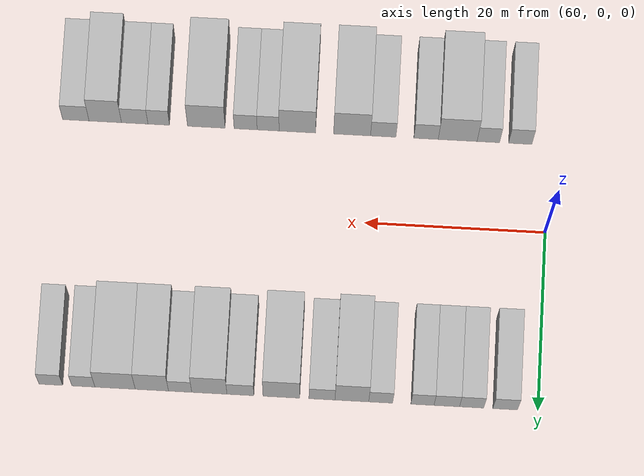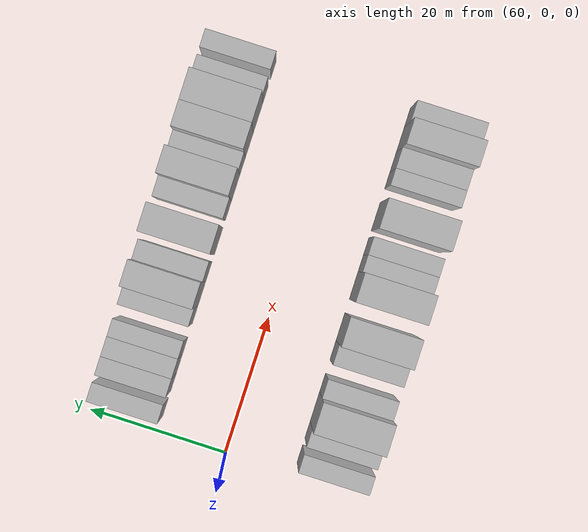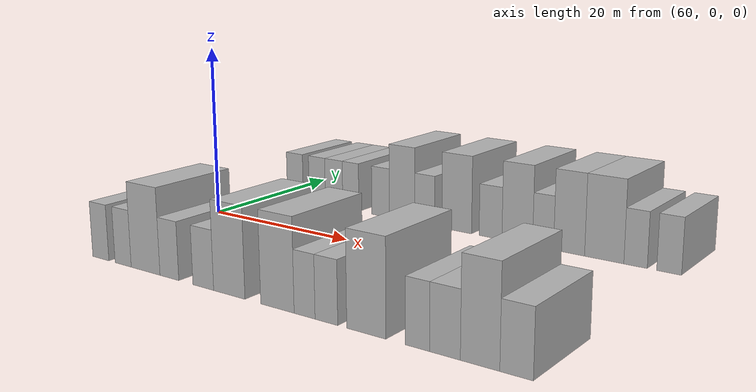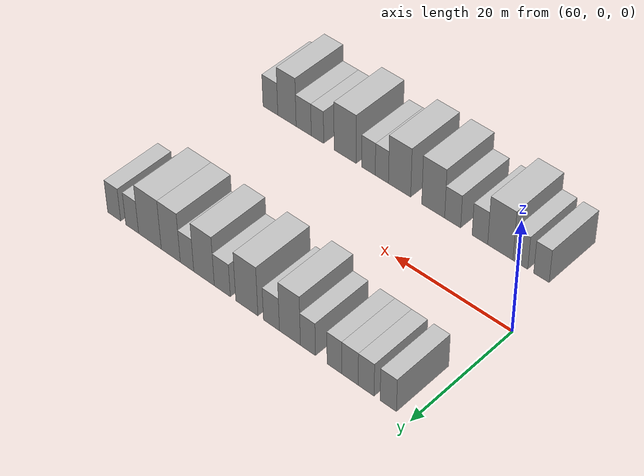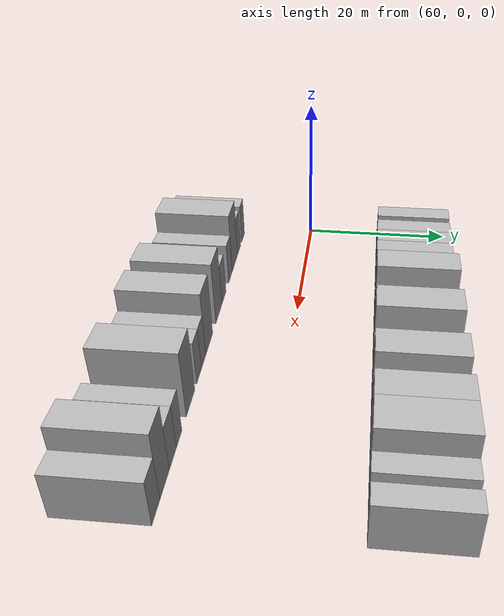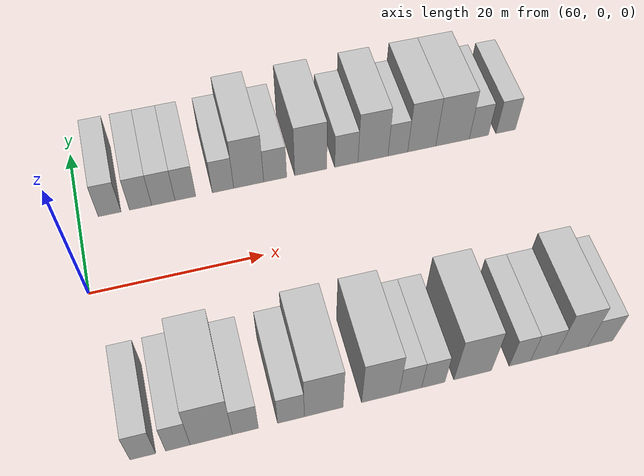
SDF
<sdf version="1.6">
 <world name="default">
  <model name="building_15">
   <static>1</static>
   <pose>63.5975 15.0000 0 0.000000 0.000000 1.570796</pose>
   <link name="link">
    <pose>0 0 3.00 0 0 0</pose>
    <collision name="collision"><geometry><box><size>10.0000 2.6962 6.0000</size></box></geometry></collision>
    <visual name="visual">
     <cast_shadows>0</cast_shadows>
     <geometry><box><size>10.0000 2.6962 6.0000</size></box></geometry>
     <material>
      <script>
       <uri>model://HANNAS_wall/materials/scripts</uri>
       <uri>model://HANNAS_wall/materials/textures</uri>
       <name>vrc/HANNAS_wall</name>
      </script>
     </material>
    </visual>
   </link>
  </model>
  <model name="building_16">
   <static>1</static>
   <pose>67.2687 15.0000 0 0.000000 0.000000 1.570796</pose>
   <link name="link">
    <pose>0 0 3.00 0 0 0</pose>
    <collision name="collision"><geometry><box><size>10.0000 2.6462 6.0000</size></box></geometry></collision>
    <visual name="visual">
     <cast_shadows>0</cast_shadows>
     <geometry><box><size>10.0000 2.6462 6.0000</size></box></geometry>
     <material>
      <script>
       <uri>model://HANNAS_wall/materials/scripts</uri>
       <uri>model://HANNAS_wall/materials/textures</uri>
       <name>vrc/HANNAS_wall</name>
      </script>
     </material>
    </visual>
   </link>
  </model>
  <model name="building_17">
   <static>1</static>
   <pose>69.9906 15.0000 0 0.000000 0.000000 1.570796</pose>
   <link name="link">
    <pose>0 0 3.00 0 0 0</pose>
    <collision name="collision"><geometry><box><size>10.0000 2.7976 6.0000</size></box></geometry></collision>
    <visual name="visual">
     <cast_shadows>0</cast_shadows>
     <geometry><box><size>10.0000 2.7976 6.0000</size></box></geometry>
     <material>
      <script>
       <uri>model://HANNAS_wall/materials/scripts</uri>
       <uri>model://HANNAS_wall/materials/textures</uri>
       <name>vrc/HANNAS_wall</name>
      </script>
     </material>
    </visual>
   </link>
  </model>
  <model name="building_18">
   <static>1</static>
   <pose>72.6465 15.0000 0 0.000000 0.000000 1.570796</pose>
   <link name="link">
    <pose>0 0 3.00 0 0 0</pose>
    <collision name="collision"><geometry><box><size>10.0000 2.5141 6.0000</size></box></geometry></collision>
    <visual name="visual">
     <cast_shadows>0</cast_shadows>
     <geometry><box><size>10.0000 2.5141 6.0000</size></box></geometry>
     <material>
      <script>
       <uri>model://HANNAS_wall/materials/scripts</uri>
       <uri>model://HANNAS_wall/materials/textures</uri>
       <name>vrc/HANNAS_wall</name>
      </script>
     </material>
    </visual>
   </link>
  </model>
  <model name="building_19">
   <static>1</static>
   <pose>77.2143 15.0000 0 0.000000 0.000000 1.570796</pose>
   <link name="link">
    <pose>0 0 3.00 0 0 0</pose>
    <collision name="collision"><geometry><box><size>10.0000 2.6215 6.0000</size></box></geometry></collision>
    <visual name="visual">
     <cast_shadows>0</cast_shadows>
     <geometry><box><size>10.0000 2.6215 6.0000</size></box></geometry>
     <material>
      <script>
       <uri>model://HANNAS_wall/materials/scripts</uri>
       <uri>model://HANNAS_wall/materials/textures</uri>
       <name>vrc/HANNAS_wall</name>
      </script>
     </material>
    </visual>
   </link>
  </model>
  <model name="building_20">
   <static>1</static>
   <pose>80.3716 15.0000 0 0.000000 0.000000 1.570796</pose>
   <link name="link">
    <pose>0 0 4.50 0 0 0</pose>
    <collision name="collision"><geometry><box><size>10.0000 3.6931 9.0000</size></box></geometry></collision>
    <visual name="visual">
     <cast_shadows>0</cast_shadows>
     <geometry><box><size>10.0000 3.6931 9.0000</size></box></geometry>
     <material>
      <script>
       <uri>model://HANNAS_wall/materials/scripts</uri>
       <uri>model://HANNAS_wall/materials/textures</uri>
       <name>vrc/HANNAS_wall</name>
      </script>
     </material>
    </visual>
   </link>
  </model>
  <model name="building_21">
   <static>1</static>
   <pose>83.6435 15.0000 0 0.000000 0.000000 1.570796</pose>
   <link name="link">
    <pose>0 0 3.00 0 0 0</pose>
    <collision name="collision"><geometry><box><size>10.0000 2.8508 6.0000</size></box></geometry></collision>
    <visual name="visual">
     <cast_shadows>0</cast_shadows>
     <geometry><box><size>10.0000 2.8508 6.0000</size></box></geometry>
     <material>
      <script>
       <uri>model://HANNAS_wall/materials/scripts</uri>
       <uri>model://HANNAS_wall/materials/textures</uri>
       <name>vrc/HANNAS_wall</name>
      </script>
     </material>
    </visual>
   </link>
  </model>
  <model name="building_22">
   <static>1</static>
   <pose>88.0802 15.0000 0 0.000000 0.000000 1.570796</pose>
   <link name="link">
    <pose>0 0 4.50 0 0 0</pose>
    <collision name="collision"><geometry><box><size>10.0000 4.0225 9.0000</size></box></geometry></collision>
    <visual name="visual">
     <cast_shadows>0</cast_shadows>
     <geometry><box><size>10.0000 4.0225 9.0000</size></box></geometry>
     <material>
      <script>
       <uri>model://HANNAS_wall/materials/scripts</uri>
       <uri>model://HANNAS_wall/materials/textures</uri>
       <name>vrc/HANNAS_wall</name>
      </script>
     </material>
    </visual>
   </link>
  </model>
  <model name="building_23">
   <static>1</static>
   <pose>92.5674 15.0000 0 0.000000 0.000000 1.570796</pose>
   <link name="link">
    <pose>0 0 3.00 0 0 0</pose>
    <collision name="collision"><geometry><box><size>10.0000 2.9518 6.0000</size></box></geometry></collision>
    <visual name="visual">
     <cast_shadows>0</cast_shadows>
     <geometry><box><size>10.0000 2.9518 6.0000</size></box></geometry>
     <material>
      <script>
       <uri>model://HANNAS_wall/materials/scripts</uri>
       <uri>model://HANNAS_wall/materials/textures</uri>
       <name>vrc/HANNAS_wall</name>
      </script>
     </material>
    </visual>
   </link>
  </model>
  <model name="building_24">
   <static>1</static>
   <pose>95.9662 15.0000 0 0.000000 0.000000 1.570796</pose>
   <link name="link">
    <pose>0 0 4.50 0 0 0</pose>
    <collision name="collision"><geometry><box><size>10.0000 3.8458 9.0000</size></box></geometry></collision>
    <visual name="visual">
     <cast_shadows>0</cast_shadows>
     <geometry><box><size>10.0000 3.8458 9.0000</size></box></geometry>
     <material>
      <script>
       <uri>model://HANNAS_wall/materials/scripts</uri>
       <uri>model://HANNAS_wall/materials/textures</uri>
       <name>vrc/HANNAS_wall</name>
      </script>
     </material>
    </visual>
   </link>
  </model>
  <model name="building_25">
   <static>1</static>
   <pose>99.1635 15.0000 0 0.000000 0.000000 1.570796</pose>
   <link name="link">
    <pose>0 0 3.00 0 0 0</pose>
    <collision name="collision"><geometry><box><size>10.0000 2.5488 6.0000</size></box></geometry></collision>
    <visual name="visual">
     <cast_shadows>0</cast_shadows>
     <geometry><box><size>10.0000 2.5488 6.0000</size></box></geometry>
     <material>
      <script>
       <uri>model://HANNAS_wall/materials/scripts</uri>
       <uri>model://HANNAS_wall/materials/textures</uri>
       <name>vrc/HANNAS_wall</name>
      </script>
     </material>
    </visual>
   </link>
  </model>
  <model name="building_26">
   <static>1</static>
   <pose>102.2581 15.0000 0 0.000000 0.000000 1.570796</pose>
   <link name="link">
    <pose>0 0 4.50 0 0 0</pose>
    <collision name="collision"><geometry><box><size>10.0000 3.6404 9.0000</size></box></geometry></collision>
    <visual name="visual">
     <cast_shadows>0</cast_shadows>
     <geometry><box><size>10.0000 3.6404 9.0000</size></box></geometry>
     <material>
      <script>
       <uri>model://HANNAS_wall/materials/scripts</uri>
       <uri>model://HANNAS_wall/materials/textures</uri>
       <name>vrc/HANNAS_wall</name>
      </script>
     </material>
    </visual>
   </link>
  </model>
  <model name="building_27">
   <static>1</static>
   <pose>106.2851 15.0000 0 0.000000 0.000000 1.570796</pose>
   <link name="link">
    <pose>0 0 4.50 0 0 0</pose>
    <collision name="collision"><geometry><box><size>10.0000 4.4137 9.0000</size></box></geometry></collision>
    <visual name="visual">
     <cast_shadows>0</cast_shadows>
     <geometry><box><size>10.0000 4.4137 9.0000</size></box></geometry>
     <material>
      <script>
       <uri>model://HANNAS_wall/materials/scripts</uri>
       <uri>model://HANNAS_wall/materials/textures</uri>
       <name>vrc/HANNAS_wall</name>
      </script>
     </material>
    </visual>
   </link>
  </model>
  <model name="building_28">
   <static>1</static>
   <pose>109.7603 15.0000 0 0.000000 0.000000 1.570796</pose>
   <link name="link">
    <pose>0 0 3.00 0 0 0</pose>
    <collision name="collision"><geometry><box><size>10.0000 2.5368 6.0000</size></box></geometry></collision>
    <visual name="visual">
     <cast_shadows>0</cast_shadows>
     <geometry><box><size>10.0000 2.5368 6.0000</size></box></geometry>
     <material>
      <script>
       <uri>model://HANNAS_wall/materials/scripts</uri>
       <uri>model://HANNAS_wall/materials/textures</uri>
       <name>vrc/HANNAS_wall</name>
      </script>
     </material>
    </visual>
   </link>
  </model>
  <model name="building_29">
   <static>1</static>
   <pose>113.3267 15.0000 0 0.000000 0.000000 1.570796</pose>
   <link name="link">
    <pose>0 0 3.00 0 0 0</pose>
    <collision name="collision"><geometry><box><size>10.0000 2.5958 6.0000</size></box></geometry></collision>
    <visual name="visual">
     <cast_shadows>0</cast_shadows>
     <geometry><box><size>10.0000 2.5958 6.0000</size></box></geometry>
     <material>
      <script>
       <uri>model://HANNAS_wall/materials/scripts</uri>
       <uri>model://HANNAS_wall/materials/textures</uri>
       <name>vrc/HANNAS_wall</name>
      </script>
     </material>
    </visual>
   </link>
  </model>
  <model name="building_72">
   <static>1</static>
   <pose>63.1163 -15.0000 0 0.000000 0.000000 1.570796</pose>
   <link name="link">
    <pose>0 0 3.00 0 0 0</pose>
    <collision name="collision"><geometry><box><size>10.0000 2.5925 6.0000</size></box></geometry></collision>
    <visual name="visual">
     <cast_shadows>0</cast_shadows>
     <geometry><box><size>10.0000 2.5925 6.0000</size></box></geometry>
     <material>
      <script>
       <uri>model://HANNAS_wall/materials/scripts</uri>
       <uri>model://HANNAS_wall/materials/textures</uri>
       <name>vrc/HANNAS_wall</name>
      </script>
     </material>
    </visual>
   </link>
  </model>
  <model name="building_73">
   <static>1</static>
   <pose>66.6701 -15.0000 0 0.000000 0.000000 1.570796</pose>
   <link name="link">
    <pose>0 0 3.00 0 0 0</pose>
    <collision name="collision"><geometry><box><size>10.0000 2.5153 6.0000</size></box></geometry></collision>
    <visual name="visual">
     <cast_shadows>0</cast_shadows>
     <geometry><box><size>10.0000 2.5153 6.0000</size></box></geometry>
     <material>
      <script>
       <uri>model://HANNAS_wall/materials/scripts</uri>
       <uri>model://HANNAS_wall/materials/textures</uri>
       <name>vrc/HANNAS_wall</name>
      </script>
     </material>
    </visual>
   </link>
  </model>
  <model name="building_74">
   <static>1</static>
   <pose>70.0931 -15.0000 0 0.000000 0.000000 1.570796</pose>
   <link name="link">
    <pose>0 0 4.50 0 0 0</pose>
    <collision name="collision"><geometry><box><size>10.0000 4.3306 9.0000</size></box></geometry></collision>
    <visual name="visual">
     <cast_shadows>0</cast_shadows>
     <geometry><box><size>10.0000 4.3306 9.0000</size></box></geometry>
     <material>
      <script>
       <uri>model://HANNAS_wall/materials/scripts</uri>
       <uri>model://HANNAS_wall/materials/textures</uri>
       <name>vrc/HANNAS_wall</name>
      </script>
     </material>
    </visual>
   </link>
  </model>
  <model name="building_75">
   <static>1</static>
   <pose>73.6156 -15.0000 0 0.000000 0.000000 1.570796</pose>
   <link name="link">
    <pose>0 0 3.00 0 0 0</pose>
    <collision name="collision"><geometry><box><size>10.0000 2.7145 6.0000</size></box></geometry></collision>
    <visual name="visual">
     <cast_shadows>0</cast_shadows>
     <geometry><box><size>10.0000 2.7145 6.0000</size></box></geometry>
     <material>
      <script>
       <uri>model://HANNAS_wall/materials/scripts</uri>
       <uri>model://HANNAS_wall/materials/textures</uri>
       <name>vrc/HANNAS_wall</name>
      </script>
     </material>
    </visual>
   </link>
  </model>
  <model name="building_76">
   <static>1</static>
   <pose>78.3901 -15.0000 0 0.000000 0.000000 1.570796</pose>
   <link name="link">
    <pose>0 0 3.00 0 0 0</pose>
    <collision name="collision"><geometry><box><size>10.0000 2.8345 6.0000</size></box></geometry></collision>
    <visual name="visual">
     <cast_shadows>0</cast_shadows>
     <geometry><box><size>10.0000 2.8345 6.0000</size></box></geometry>
     <material>
      <script>
       <uri>model://HANNAS_wall/materials/scripts</uri>
       <uri>model://HANNAS_wall/materials/textures</uri>
       <name>vrc/HANNAS_wall</name>
      </script>
     </material>
    </visual>
   </link>
  </model>
  <model name="building_77">
   <static>1</static>
   <pose>81.8644 -15.0000 0 0.000000 0.000000 1.570796</pose>
   <link name="link">
    <pose>0 0 4.50 0 0 0</pose>
    <collision name="collision"><geometry><box><size>10.0000 4.1142 9.0000</size></box></geometry></collision>
    <visual name="visual">
     <cast_shadows>0</cast_shadows>
     <geometry><box><size>10.0000 4.1142 9.0000</size></box></geometry>
     <material>
      <script>
       <uri>model://HANNAS_wall/materials/scripts</uri>
       <uri>model://HANNAS_wall/materials/textures</uri>
       <name>vrc/HANNAS_wall</name>
      </script>
     </material>
    </visual>
   </link>
  </model>
  <model name="building_78">
   <static>1</static>
   <pose>87.9606 -15.0000 0 0.000000 0.000000 1.570796</pose>
   <link name="link">
    <pose>0 0 4.50 0 0 0</pose>
    <collision name="collision"><geometry><box><size>10.0000 4.0783 9.0000</size></box></geometry></collision>
    <visual name="visual">
     <cast_shadows>0</cast_shadows>
     <geometry><box><size>10.0000 4.0783 9.0000</size></box></geometry>
     <material>
      <script>
       <uri>model://HANNAS_wall/materials/scripts</uri>
       <uri>model://HANNAS_wall/materials/textures</uri>
       <name>vrc/HANNAS_wall</name>
      </script>
     </material>
    </visual>
   </link>
  </model>
  <model name="building_79">
   <static>1</static>
   <pose>91.2246 -15.0000 0 0.000000 0.000000 1.570796</pose>
   <link name="link">
    <pose>0 0 3.00 0 0 0</pose>
    <collision name="collision"><geometry><box><size>10.0000 2.4495 6.0000</size></box></geometry></collision>
    <visual name="visual">
     <cast_shadows>0</cast_shadows>
     <geometry><box><size>10.0000 2.4495 6.0000</size></box></geometry>
     <material>
      <script>
       <uri>model://HANNAS_wall/materials/scripts</uri>
       <uri>model://HANNAS_wall/materials/textures</uri>
       <name>vrc/HANNAS_wall</name>
      </script>
     </material>
    </visual>
   </link>
  </model>
  <model name="building_80">
   <static>1</static>
   <pose>93.7338 -15.0000 0 0.000000 0.000000 1.570796</pose>
   <link name="link">
    <pose>0 0 3.00 0 0 0</pose>
    <collision name="collision"><geometry><box><size>10.0000 2.5689 6.0000</size></box></geometry></collision>
    <visual name="visual">
     <cast_shadows>0</cast_shadows>
     <geometry><box><size>10.0000 2.5689 6.0000</size></box></geometry>
     <material>
      <script>
       <uri>model://HANNAS_wall/materials/scripts</uri>
       <uri>model://HANNAS_wall/materials/textures</uri>
       <name>vrc/HANNAS_wall</name>
      </script>
     </material>
    </visual>
   </link>
  </model>
  <model name="building_81">
   <static>1</static>
   <pose>98.1179 -15.0000 0 0.000000 0.000000 1.570796</pose>
   <link name="link">
    <pose>0 0 4.50 0 0 0</pose>
    <collision name="collision"><geometry><box><size>10.0000 4.1994 9.0000</size></box></geometry></collision>
    <visual name="visual">
     <cast_shadows>0</cast_shadows>
     <geometry><box><size>10.0000 4.1994 9.0000</size></box></geometry>
     <material>
      <script>
       <uri>model://HANNAS_wall/materials/scripts</uri>
       <uri>model://HANNAS_wall/materials/textures</uri>
       <name>vrc/HANNAS_wall</name>
      </script>
     </material>
    </visual>
   </link>
  </model>
  <model name="building_82">
   <static>1</static>
   <pose>103.4249 -15.0000 0 0.000000 0.000000 1.570796</pose>
   <link name="link">
    <pose>0 0 3.00 0 0 0</pose>
    <collision name="collision"><geometry><box><size>10.0000 2.4146 6.0000</size></box></geometry></collision>
    <visual name="visual">
     <cast_shadows>0</cast_shadows>
     <geometry><box><size>10.0000 2.4146 6.0000</size></box></geometry>
     <material>
      <script>
       <uri>model://HANNAS_wall/materials/scripts</uri>
       <uri>model://HANNAS_wall/materials/textures</uri>
       <name>vrc/HANNAS_wall</name>
      </script>
     </material>
    </visual>
   </link>
  </model>
  <model name="building_83">
   <static>1</static>
   <pose>106.1105 -15.0000 0 0.000000 0.000000 1.570796</pose>
   <link name="link">
    <pose>0 0 3.00 0 0 0</pose>
    <collision name="collision"><geometry><box><size>10.0000 2.9567 6.0000</size></box></geometry></collision>
    <visual name="visual">
     <cast_shadows>0</cast_shadows>
     <geometry><box><size>10.0000 2.9567 6.0000</size></box></geometry>
     <material>
      <script>
       <uri>model://HANNAS_wall/materials/scripts</uri>
       <uri>model://HANNAS_wall/materials/textures</uri>
       <name>vrc/HANNAS_wall</name>
      </script>
     </material>
    </visual>
   </link>
  </model>
  <model name="building_84">
   <static>1</static>
   <pose>109.3991 -15.0000 0 0.000000 0.000000 1.570796</pose>
   <link name="link">
    <pose>0 0 4.50 0 0 0</pose>
    <collision name="collision"><geometry><box><size>10.0000 3.6205 9.0000</size></box></geometry></collision>
    <visual name="visual">
     <cast_shadows>0</cast_shadows>
     <geometry><box><size>10.0000 3.6205 9.0000</size></box></geometry>
     <material>
      <script>
       <uri>model://HANNAS_wall/materials/scripts</uri>
       <uri>model://HANNAS_wall/materials/textures</uri>
       <name>vrc/HANNAS_wall</name>
      </script>
     </material>
    </visual>
   </link>
  </model>
  <model name="building_85">
   <static>1</static>
   <pose>112.6812 -15.0000 0 0.000000 0.000000 1.570796</pose>
   <link name="link">
    <pose>0 0 3.00 0 0 0</pose>
    <collision name="collision"><geometry><box><size>10.0000 2.9437 6.0000</size></box></geometry></collision>
    <visual name="visual">
     <cast_shadows>0</cast_shadows>
     <geometry><box><size>10.0000 2.9437 6.0000</size></box></geometry>
     <material>
      <script>
       <uri>model://HANNAS_wall/materials/scripts</uri>
       <uri>model://HANNAS_wall/materials/textures</uri>
       <name>vrc/HANNAS_wall</name>
      </script>
     </material>
    </visual>
   </link>
  </model>
 </world>
</sdf>
